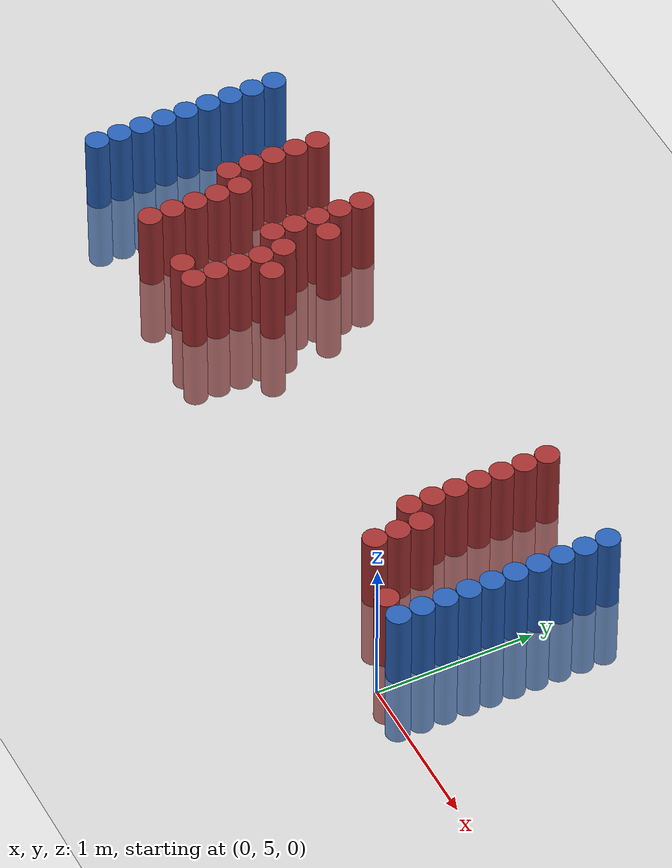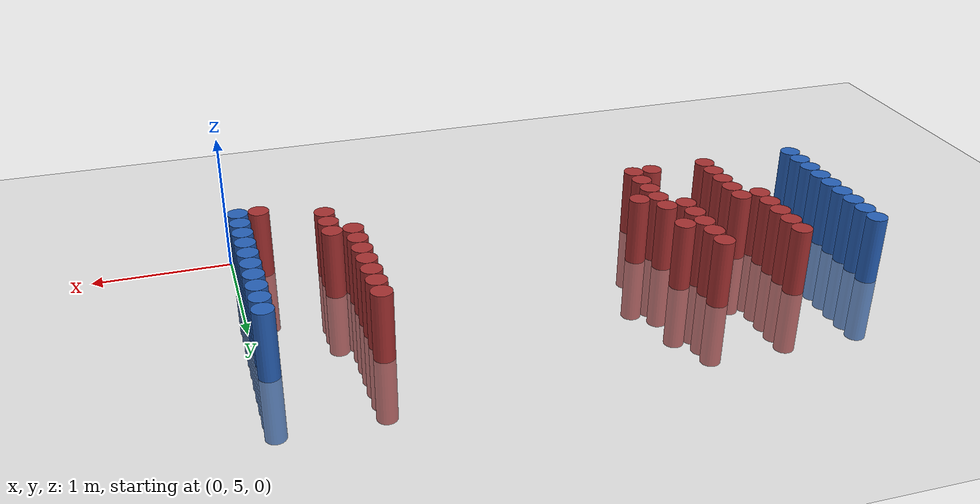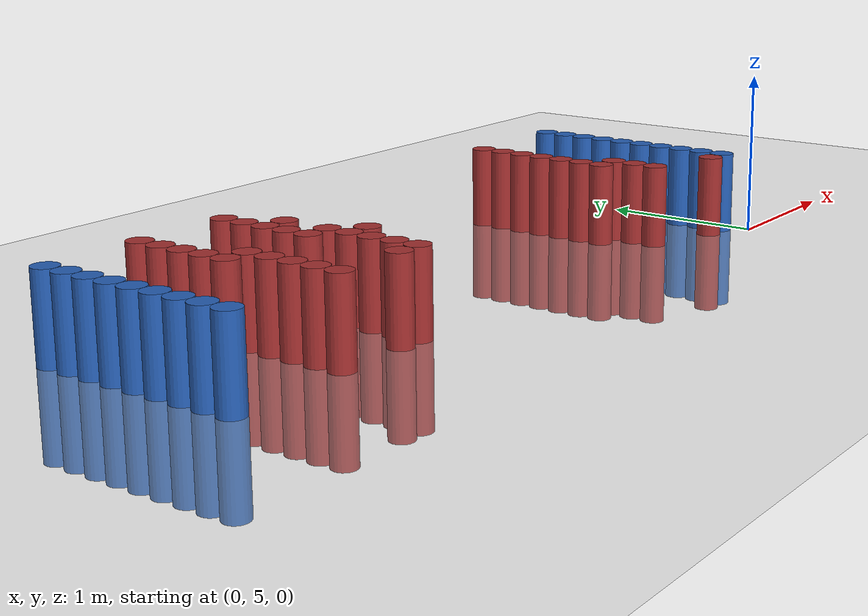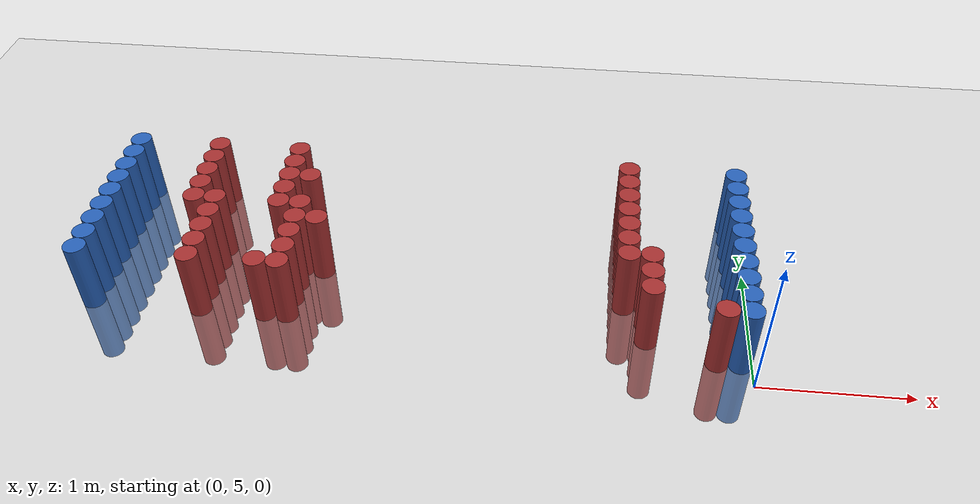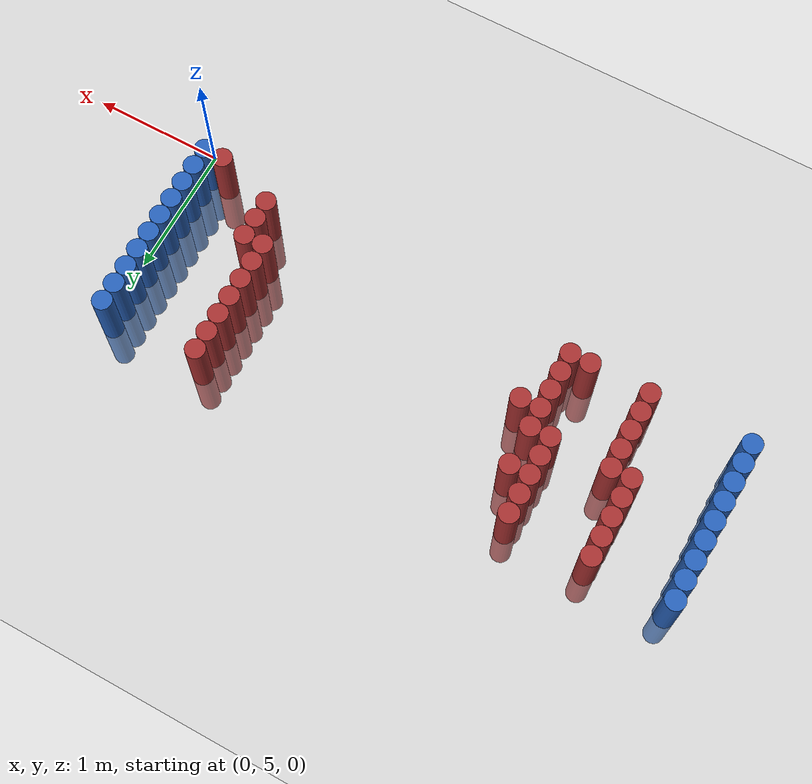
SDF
<sdf version="1.6">
 <world name="default">
  <model name="ground_plane">
   <static>1</static>
   <link name="link">
    <collision name="collision">
     <geometry><plane><normal>0 0 1</normal><size>100 100</size></plane></geometry>
     <surface><friction><ode><mu>100</mu><mu2>50</mu2></ode></friction></surface>
    </collision>
    <visual name="visual">
     <cast_shadows>0</cast_shadows>
     <geometry><plane><normal>0 0 1</normal><size>100 100</size></plane></geometry>
     <material>
      <script><uri>file://media/materials/scripts/gazebo.material</uri><name>Gazebo/Grey</name></script>
     </material>
    </visual>
   </link>
  </model>
  <model name="unit_cylinder_97">
   <static>1</static>
   <pose>-4.425000 5.325000 0.000000 0.000000 0.000000 0.000000</pose>
   <link name="link">
    <inertial>
     <mass>1</mass>
     <inertia><ixx>0.145833</ixx><ixy>0</ixy><ixz>0</ixz><iyy>0.145833</iyy><iyz>0</iyz><izz>0.125</izz></inertia>
    </inertial>
    <collision name="collision">
     <geometry><cylinder><radius>0.075000</radius><length>1</length></cylinder></geometry>
    </collision>
    <visual name="visual">
     <geometry><cylinder><radius>0.075000</radius><length>1</length></cylinder></geometry>
     <material>
      <ambient>0.152000 0.379000 0.720000 1</ambient>
      <diffuse>0.152000 0.379000 0.720000 1</diffuse>
     </material>
     <material>
      <script><name>Gazebo/Grey</name><uri>file://media/materials/scripts/gazebo.material</uri></script>
     </material>
    </visual>
   </link>
  </model>
  <model name="unit_cylinder_98">
   <static>1</static>
   <pose>-4.425000 5.475000 0.000000 0.000000 0.000000 0.000000</pose>
   <link name="link">
    <inertial>
     <mass>1</mass>
     <inertia><ixx>0.145833</ixx><ixy>0</ixy><ixz>0</ixz><iyy>0.145833</iyy><iyz>0</iyz><izz>0.125</izz></inertia>
    </inertial>
    <collision name="collision">
     <geometry><cylinder><radius>0.075000</radius><length>1</length></cylinder></geometry>
    </collision>
    <visual name="visual">
     <geometry><cylinder><radius>0.075000</radius><length>1</length></cylinder></geometry>
     <material>
      <ambient>0.152000 0.379000 0.720000 1</ambient>
      <diffuse>0.152000 0.379000 0.720000 1</diffuse>
     </material>
     <material>
      <script><name>Gazebo/Grey</name><uri>file://media/materials/scripts/gazebo.material</uri></script>
     </material>
    </visual>
   </link>
  </model>
  <model name="unit_cylinder_99">
   <static>1</static>
   <pose>-4.425000 5.625000 0.000000 0.000000 0.000000 0.000000</pose>
   <link name="link">
    <inertial>
     <mass>1</mass>
     <inertia><ixx>0.145833</ixx><ixy>0</ixy><ixz>0</ixz><iyy>0.145833</iyy><iyz>0</iyz><izz>0.125</izz></inertia>
    </inertial>
    <collision name="collision">
     <geometry><cylinder><radius>0.075000</radius><length>1</length></cylinder></geometry>
    </collision>
    <visual name="visual">
     <geometry><cylinder><radius>0.075000</radius><length>1</length></cylinder></geometry>
     <material>
      <ambient>0.152000 0.379000 0.720000 1</ambient>
      <diffuse>0.152000 0.379000 0.720000 1</diffuse>
     </material>
     <material>
      <script><name>Gazebo/Grey</name><uri>file://media/materials/scripts/gazebo.material</uri></script>
     </material>
    </visual>
   </link>
  </model>
  <model name="unit_cylinder_100">
   <static>1</static>
   <pose>-4.425000 5.775000 0.000000 0.000000 0.000000 0.000000</pose>
   <link name="link">
    <inertial>
     <mass>1</mass>
     <inertia><ixx>0.145833</ixx><ixy>0</ixy><ixz>0</ixz><iyy>0.145833</iyy><iyz>0</iyz><izz>0.125</izz></inertia>
    </inertial>
    <collision name="collision">
     <geometry><cylinder><radius>0.075000</radius><length>1</length></cylinder></geometry>
    </collision>
    <visual name="visual">
     <geometry><cylinder><radius>0.075000</radius><length>1</length></cylinder></geometry>
     <material>
      <ambient>0.152000 0.379000 0.720000 1</ambient>
      <diffuse>0.152000 0.379000 0.720000 1</diffuse>
     </material>
     <material>
      <script><name>Gazebo/Grey</name><uri>file://media/materials/scripts/gazebo.material</uri></script>
     </material>
    </visual>
   </link>
  </model>
  <model name="unit_cylinder_101">
   <static>1</static>
   <pose>-4.425000 5.925000 0.000000 0.000000 0.000000 0.000000</pose>
   <link name="link">
    <inertial>
     <mass>1</mass>
     <inertia><ixx>0.145833</ixx><ixy>0</ixy><ixz>0</ixz><iyy>0.145833</iyy><iyz>0</iyz><izz>0.125</izz></inertia>
    </inertial>
    <collision name="collision">
     <geometry><cylinder><radius>0.075000</radius><length>1</length></cylinder></geometry>
    </collision>
    <visual name="visual">
     <geometry><cylinder><radius>0.075000</radius><length>1</length></cylinder></geometry>
     <material>
      <ambient>0.152000 0.379000 0.720000 1</ambient>
      <diffuse>0.152000 0.379000 0.720000 1</diffuse>
     </material>
     <material>
      <script><name>Gazebo/Grey</name><uri>file://media/materials/scripts/gazebo.material</uri></script>
     </material>
    </visual>
   </link>
  </model>
  <model name="unit_cylinder_102">
   <static>1</static>
   <pose>-4.425000 6.075000 0.000000 0.000000 0.000000 0.000000</pose>
   <link name="link">
    <inertial>
     <mass>1</mass>
     <inertia><ixx>0.145833</ixx><ixy>0</ixy><ixz>0</ixz><iyy>0.145833</iyy><iyz>0</iyz><izz>0.125</izz></inertia>
    </inertial>
    <collision name="collision">
     <geometry><cylinder><radius>0.075000</radius><length>1</length></cylinder></geometry>
    </collision>
    <visual name="visual">
     <geometry><cylinder><radius>0.075000</radius><length>1</length></cylinder></geometry>
     <material>
      <ambient>0.152000 0.379000 0.720000 1</ambient>
      <diffuse>0.152000 0.379000 0.720000 1</diffuse>
     </material>
     <material>
      <script><name>Gazebo/Grey</name><uri>file://media/materials/scripts/gazebo.material</uri></script>
     </material>
    </visual>
   </link>
  </model>
  <model name="unit_cylinder_103">
   <static>1</static>
   <pose>-4.425000 6.225000 0.000000 0.000000 0.000000 0.000000</pose>
   <link name="link">
    <inertial>
     <mass>1</mass>
     <inertia><ixx>0.145833</ixx><ixy>0</ixy><ixz>0</ixz><iyy>0.145833</iyy><iyz>0</iyz><izz>0.125</izz></inertia>
    </inertial>
    <collision name="collision">
     <geometry><cylinder><radius>0.075000</radius><length>1</length></cylinder></geometry>
    </collision>
    <visual name="visual">
     <geometry><cylinder><radius>0.075000</radius><length>1</length></cylinder></geometry>
     <material>
      <ambient>0.152000 0.379000 0.720000 1</ambient>
      <diffuse>0.152000 0.379000 0.720000 1</diffuse>
     </material>
     <material>
      <script><name>Gazebo/Grey</name><uri>file://media/materials/scripts/gazebo.material</uri></script>
     </material>
    </visual>
   </link>
  </model>
  <model name="unit_cylinder_104">
   <static>1</static>
   <pose>-4.425000 6.375000 0.000000 0.000000 0.000000 0.000000</pose>
   <link name="link">
    <inertial>
     <mass>1</mass>
     <inertia><ixx>0.145833</ixx><ixy>0</ixy><ixz>0</ixz><iyy>0.145833</iyy><iyz>0</iyz><izz>0.125</izz></inertia>
    </inertial>
    <collision name="collision">
     <geometry><cylinder><radius>0.075000</radius><length>1</length></cylinder></geometry>
    </collision>
    <visual name="visual">
     <geometry><cylinder><radius>0.075000</radius><length>1</length></cylinder></geometry>
     <material>
      <ambient>0.152000 0.379000 0.720000 1</ambient>
      <diffuse>0.152000 0.379000 0.720000 1</diffuse>
     </material>
     <material>
      <script><name>Gazebo/Grey</name><uri>file://media/materials/scripts/gazebo.material</uri></script>
     </material>
    </visual>
   </link>
  </model>
  <model name="unit_cylinder_105">
   <static>1</static>
   <pose>-4.425000 6.525000 0.000000 0.000000 0.000000 0.000000</pose>
   <link name="link">
    <inertial>
     <mass>1</mass>
     <inertia><ixx>0.145833</ixx><ixy>0</ixy><ixz>0</ixz><iyy>0.145833</iyy><iyz>0</iyz><izz>0.125</izz></inertia>
    </inertial>
    <collision name="collision">
     <geometry><cylinder><radius>0.075000</radius><length>1</length></cylinder></geometry>
    </collision>
    <visual name="visual">
     <geometry><cylinder><radius>0.075000</radius><length>1</length></cylinder></geometry>
     <material>
      <ambient>0.152000 0.379000 0.720000 1</ambient>
      <diffuse>0.152000 0.379000 0.720000 1</diffuse>
     </material>
     <material>
      <script><name>Gazebo/Grey</name><uri>file://media/materials/scripts/gazebo.material</uri></script>
     </material>
    </visual>
   </link>
  </model>
  <model name="unit_cylinder_131">
   <static>1</static>
   <pose>-3.825000 5.925000 0.000000 0.000000 0.000000 0.000000</pose>
   <link name="link">
    <inertial>
     <mass>1</mass>
     <inertia><ixx>0.145833</ixx><ixy>0</ixy><ixz>0</ixz><iyy>0.145833</iyy><iyz>0</iyz><izz>0.125</izz></inertia>
    </inertial>
    <collision name="collision">
     <geometry><cylinder><radius>0.075000</radius><length>1</length></cylinder></geometry>
    </collision>
    <visual name="visual">
     <geometry><cylinder><radius>0.075000</radius><length>1</length></cylinder></geometry>
     <material>
      <ambient>0.648000 0.192000 0.192000 1</ambient>
      <diffuse>0.648000 0.192000 0.192000 1</diffuse>
     </material>
     <material>
      <script><name>Gazebo/Grey</name><uri>file://media/materials/scripts/gazebo.material</uri></script>
     </material>
    </visual>
   </link>
  </model>
  <model name="unit_cylinder_132">
   <static>1</static>
   <pose>-3.825000 6.075000 0.000000 0.000000 0.000000 0.000000</pose>
   <link name="link">
    <inertial>
     <mass>1</mass>
     <inertia><ixx>0.145833</ixx><ixy>0</ixy><ixz>0</ixz><iyy>0.145833</iyy><iyz>0</iyz><izz>0.125</izz></inertia>
    </inertial>
    <collision name="collision">
     <geometry><cylinder><radius>0.075000</radius><length>1</length></cylinder></geometry>
    </collision>
    <visual name="visual">
     <geometry><cylinder><radius>0.075000</radius><length>1</length></cylinder></geometry>
     <material>
      <ambient>0.648000 0.192000 0.192000 1</ambient>
      <diffuse>0.648000 0.192000 0.192000 1</diffuse>
     </material>
     <material>
      <script><name>Gazebo/Grey</name><uri>file://media/materials/scripts/gazebo.material</uri></script>
     </material>
    </visual>
   </link>
  </model>
  <model name="unit_cylinder_133">
   <static>1</static>
   <pose>-3.825000 6.225000 0.000000 0.000000 0.000000 0.000000</pose>
   <link name="link">
    <inertial>
     <mass>1</mass>
     <inertia><ixx>0.145833</ixx><ixy>0</ixy><ixz>0</ixz><iyy>0.145833</iyy><iyz>0</iyz><izz>0.125</izz></inertia>
    </inertial>
    <collision name="collision">
     <geometry><cylinder><radius>0.075000</radius><length>1</length></cylinder></geometry>
    </collision>
    <visual name="visual">
     <geometry><cylinder><radius>0.075000</radius><length>1</length></cylinder></geometry>
     <material>
      <ambient>0.648000 0.192000 0.192000 1</ambient>
      <diffuse>0.648000 0.192000 0.192000 1</diffuse>
     </material>
     <material>
      <script><name>Gazebo/Grey</name><uri>file://media/materials/scripts/gazebo.material</uri></script>
     </material>
    </visual>
   </link>
  </model>
  <model name="unit_cylinder_134">
   <static>1</static>
   <pose>-3.825000 6.375000 0.000000 0.000000 0.000000 0.000000</pose>
   <link name="link">
    <inertial>
     <mass>1</mass>
     <inertia><ixx>0.145833</ixx><ixy>0</ixy><ixz>0</ixz><iyy>0.145833</iyy><iyz>0</iyz><izz>0.125</izz></inertia>
    </inertial>
    <collision name="collision">
     <geometry><cylinder><radius>0.075000</radius><length>1</length></cylinder></geometry>
    </collision>
    <visual name="visual">
     <geometry><cylinder><radius>0.075000</radius><length>1</length></cylinder></geometry>
     <material>
      <ambient>0.648000 0.192000 0.192000 1</ambient>
      <diffuse>0.648000 0.192000 0.192000 1</diffuse>
     </material>
     <material>
      <script><name>Gazebo/Grey</name><uri>file://media/materials/scripts/gazebo.material</uri></script>
     </material>
    </visual>
   </link>
  </model>
  <model name="unit_cylinder_135">
   <static>1</static>
   <pose>-3.825000 6.525000 0.000000 0.000000 0.000000 0.000000</pose>
   <link name="link">
    <inertial>
     <mass>1</mass>
     <inertia><ixx>0.145833</ixx><ixy>0</ixy><ixz>0</ixz><iyy>0.145833</iyy><iyz>0</iyz><izz>0.125</izz></inertia>
    </inertial>
    <collision name="collision">
     <geometry><cylinder><radius>0.075000</radius><length>1</length></cylinder></geometry>
    </collision>
    <visual name="visual">
     <geometry><cylinder><radius>0.075000</radius><length>1</length></cylinder></geometry>
     <material>
      <ambient>0.648000 0.192000 0.192000 1</ambient>
      <diffuse>0.648000 0.192000 0.192000 1</diffuse>
     </material>
     <material>
      <script><name>Gazebo/Grey</name><uri>file://media/materials/scripts/gazebo.material</uri></script>
     </material>
    </visual>
   </link>
  </model>
  <model name="unit_cylinder_151">
   <static>1</static>
   <pose>-3.675000 5.325000 0.000000 0.000000 0.000000 0.000000</pose>
   <link name="link">
    <inertial>
     <mass>1</mass>
     <inertia><ixx>0.145833</ixx><ixy>0</ixy><ixz>0</ixz><iyy>0.145833</iyy><iyz>0</iyz><izz>0.125</izz></inertia>
    </inertial>
    <collision name="collision">
     <geometry><cylinder><radius>0.075000</radius><length>1</length></cylinder></geometry>
    </collision>
    <visual name="visual">
     <geometry><cylinder><radius>0.075000</radius><length>1</length></cylinder></geometry>
     <material>
      <ambient>0.648000 0.192000 0.192000 1</ambient>
      <diffuse>0.648000 0.192000 0.192000 1</diffuse>
     </material>
     <material>
      <script><name>Gazebo/Grey</name><uri>file://media/materials/scripts/gazebo.material</uri></script>
     </material>
    </visual>
   </link>
  </model>
  <model name="unit_cylinder_152">
   <static>1</static>
   <pose>-3.675000 5.475000 0.000000 0.000000 0.000000 0.000000</pose>
   <link name="link">
    <inertial>
     <mass>1</mass>
     <inertia><ixx>0.145833</ixx><ixy>0</ixy><ixz>0</ixz><iyy>0.145833</iyy><iyz>0</iyz><izz>0.125</izz></inertia>
    </inertial>
    <collision name="collision">
     <geometry><cylinder><radius>0.075000</radius><length>1</length></cylinder></geometry>
    </collision>
    <visual name="visual">
     <geometry><cylinder><radius>0.075000</radius><length>1</length></cylinder></geometry>
     <material>
      <ambient>0.648000 0.192000 0.192000 1</ambient>
      <diffuse>0.648000 0.192000 0.192000 1</diffuse>
     </material>
     <material>
      <script><name>Gazebo/Grey</name><uri>file://media/materials/scripts/gazebo.material</uri></script>
     </material>
    </visual>
   </link>
  </model>
  <model name="unit_cylinder_153">
   <static>1</static>
   <pose>-3.675000 5.625000 0.000000 0.000000 0.000000 0.000000</pose>
   <link name="link">
    <inertial>
     <mass>1</mass>
     <inertia><ixx>0.145833</ixx><ixy>0</ixy><ixz>0</ixz><iyy>0.145833</iyy><iyz>0</iyz><izz>0.125</izz></inertia>
    </inertial>
    <collision name="collision">
     <geometry><cylinder><radius>0.075000</radius><length>1</length></cylinder></geometry>
    </collision>
    <visual name="visual">
     <geometry><cylinder><radius>0.075000</radius><length>1</length></cylinder></geometry>
     <material>
      <ambient>0.648000 0.192000 0.192000 1</ambient>
      <diffuse>0.648000 0.192000 0.192000 1</diffuse>
     </material>
     <material>
      <script><name>Gazebo/Grey</name><uri>file://media/materials/scripts/gazebo.material</uri></script>
     </material>
    </visual>
   </link>
  </model>
  <model name="unit_cylinder_154">
   <static>1</static>
   <pose>-3.675000 5.775000 0.000000 0.000000 0.000000 0.000000</pose>
   <link name="link">
    <inertial>
     <mass>1</mass>
     <inertia><ixx>0.145833</ixx><ixy>0</ixy><ixz>0</ixz><iyy>0.145833</iyy><iyz>0</iyz><izz>0.125</izz></inertia>
    </inertial>
    <collision name="collision">
     <geometry><cylinder><radius>0.075000</radius><length>1</length></cylinder></geometry>
    </collision>
    <visual name="visual">
     <geometry><cylinder><radius>0.075000</radius><length>1</length></cylinder></geometry>
     <material>
      <ambient>0.648000 0.192000 0.192000 1</ambient>
      <diffuse>0.648000 0.192000 0.192000 1</diffuse>
     </material>
     <material>
      <script><name>Gazebo/Grey</name><uri>file://media/materials/scripts/gazebo.material</uri></script>
     </material>
    </visual>
   </link>
  </model>
  <model name="unit_cylinder_155">
   <static>1</static>
   <pose>-3.675000 5.925000 0.000000 0.000000 0.000000 0.000000</pose>
   <link name="link">
    <inertial>
     <mass>1</mass>
     <inertia><ixx>0.145833</ixx><ixy>0</ixy><ixz>0</ixz><iyy>0.145833</iyy><iyz>0</iyz><izz>0.125</izz></inertia>
    </inertial>
    <collision name="collision">
     <geometry><cylinder><radius>0.075000</radius><length>1</length></cylinder></geometry>
    </collision>
    <visual name="visual">
     <geometry><cylinder><radius>0.075000</radius><length>1</length></cylinder></geometry>
     <material>
      <ambient>0.648000 0.192000 0.192000 1</ambient>
      <diffuse>0.648000 0.192000 0.192000 1</diffuse>
     </material>
     <material>
      <script><name>Gazebo/Grey</name><uri>file://media/materials/scripts/gazebo.material</uri></script>
     </material>
    </visual>
   </link>
  </model>
  <model name="unit_cylinder_171">
   <static>1</static>
   <pose>-3.225000 5.325000 0.000000 0.000000 0.000000 0.000000</pose>
   <link name="link">
    <inertial>
     <mass>1</mass>
     <inertia><ixx>0.145833</ixx><ixy>0</ixy><ixz>0</ixz><iyy>0.145833</iyy><iyz>0</iyz><izz>0.125</izz></inertia>
    </inertial>
    <collision name="collision">
     <geometry><cylinder><radius>0.075000</radius><length>1</length></cylinder></geometry>
    </collision>
    <visual name="visual">
     <geometry><cylinder><radius>0.075000</radius><length>1</length></cylinder></geometry>
     <material>
      <ambient>0.648000 0.192000 0.192000 1</ambient>
      <diffuse>0.648000 0.192000 0.192000 1</diffuse>
     </material>
     <material>
      <script><name>Gazebo/Grey</name><uri>file://media/materials/scripts/gazebo.material</uri></script>
     </material>
    </visual>
   </link>
  </model>
  <model name="unit_cylinder_172">
   <static>1</static>
   <pose>-3.225000 5.925000 0.000000 0.000000 0.000000 0.000000</pose>
   <link name="link">
    <inertial>
     <mass>1</mass>
     <inertia><ixx>0.145833</ixx><ixy>0</ixy><ixz>0</ixz><iyy>0.145833</iyy><iyz>0</iyz><izz>0.125</izz></inertia>
    </inertial>
    <collision name="collision">
     <geometry><cylinder><radius>0.075000</radius><length>1</length></cylinder></geometry>
    </collision>
    <visual name="visual">
     <geometry><cylinder><radius>0.075000</radius><length>1</length></cylinder></geometry>
     <material>
      <ambient>0.648000 0.192000 0.192000 1</ambient>
      <diffuse>0.648000 0.192000 0.192000 1</diffuse>
     </material>
     <material>
      <script><name>Gazebo/Grey</name><uri>file://media/materials/scripts/gazebo.material</uri></script>
     </material>
    </visual>
   </link>
  </model>
  <model name="unit_cylinder_173">
   <static>1</static>
   <pose>-3.225000 6.075000 0.000000 0.000000 0.000000 0.000000</pose>
   <link name="link">
    <inertial>
     <mass>1</mass>
     <inertia><ixx>0.145833</ixx><ixy>0</ixy><ixz>0</ixz><iyy>0.145833</iyy><iyz>0</iyz><izz>0.125</izz></inertia>
    </inertial>
    <collision name="collision">
     <geometry><cylinder><radius>0.075000</radius><length>1</length></cylinder></geometry>
    </collision>
    <visual name="visual">
     <geometry><cylinder><radius>0.075000</radius><length>1</length></cylinder></geometry>
     <material>
      <ambient>0.648000 0.192000 0.192000 1</ambient>
      <diffuse>0.648000 0.192000 0.192000 1</diffuse>
     </material>
     <material>
      <script><name>Gazebo/Grey</name><uri>file://media/materials/scripts/gazebo.material</uri></script>
     </material>
    </visual>
   </link>
  </model>
  <model name="unit_cylinder_174">
   <static>1</static>
   <pose>-3.225000 6.225000 0.000000 0.000000 0.000000 0.000000</pose>
   <link name="link">
    <inertial>
     <mass>1</mass>
     <inertia><ixx>0.145833</ixx><ixy>0</ixy><ixz>0</ixz><iyy>0.145833</iyy><iyz>0</iyz><izz>0.125</izz></inertia>
    </inertial>
    <collision name="collision">
     <geometry><cylinder><radius>0.075000</radius><length>1</length></cylinder></geometry>
    </collision>
    <visual name="visual">
     <geometry><cylinder><radius>0.075000</radius><length>1</length></cylinder></geometry>
     <material>
      <ambient>0.648000 0.192000 0.192000 1</ambient>
      <diffuse>0.648000 0.192000 0.192000 1</diffuse>
     </material>
     <material>
      <script><name>Gazebo/Grey</name><uri>file://media/materials/scripts/gazebo.material</uri></script>
     </material>
    </visual>
   </link>
  </model>
  <model name="unit_cylinder_175">
   <static>1</static>
   <pose>-3.225000 6.375000 0.000000 0.000000 0.000000 0.000000</pose>
   <link name="link">
    <inertial>
     <mass>1</mass>
     <inertia><ixx>0.145833</ixx><ixy>0</ixy><ixz>0</ixz><iyy>0.145833</iyy><iyz>0</iyz><izz>0.125</izz></inertia>
    </inertial>
    <collision name="collision">
     <geometry><cylinder><radius>0.075000</radius><length>1</length></cylinder></geometry>
    </collision>
    <visual name="visual">
     <geometry><cylinder><radius>0.075000</radius><length>1</length></cylinder></geometry>
     <material>
      <ambient>0.648000 0.192000 0.192000 1</ambient>
      <diffuse>0.648000 0.192000 0.192000 1</diffuse>
     </material>
     <material>
      <script><name>Gazebo/Grey</name><uri>file://media/materials/scripts/gazebo.material</uri></script>
     </material>
    </visual>
   </link>
  </model>
  <model name="unit_cylinder_176">
   <static>1</static>
   <pose>-3.225000 6.525000 0.000000 0.000000 0.000000 0.000000</pose>
   <link name="link">
    <inertial>
     <mass>1</mass>
     <inertia><ixx>0.145833</ixx><ixy>0</ixy><ixz>0</ixz><iyy>0.145833</iyy><iyz>0</iyz><izz>0.125</izz></inertia>
    </inertial>
    <collision name="collision">
     <geometry><cylinder><radius>0.075000</radius><length>1</length></cylinder></geometry>
    </collision>
    <visual name="visual">
     <geometry><cylinder><radius>0.075000</radius><length>1</length></cylinder></geometry>
     <material>
      <ambient>0.648000 0.192000 0.192000 1</ambient>
      <diffuse>0.648000 0.192000 0.192000 1</diffuse>
     </material>
     <material>
      <script><name>Gazebo/Grey</name><uri>file://media/materials/scripts/gazebo.material</uri></script>
     </material>
    </visual>
   </link>
  </model>
  <model name="unit_cylinder_188">
   <static>1</static>
   <pose>-3.075000 5.325000 0.000000 0.000000 0.000000 0.000000</pose>
   <link name="link">
    <inertial>
     <mass>1</mass>
     <inertia><ixx>0.145833</ixx><ixy>0</ixy><ixz>0</ixz><iyy>0.145833</iyy><iyz>0</iyz><izz>0.125</izz></inertia>
    </inertial>
    <collision name="collision">
     <geometry><cylinder><radius>0.075000</radius><length>1</length></cylinder></geometry>
    </collision>
    <visual name="visual">
     <geometry><cylinder><radius>0.075000</radius><length>1</length></cylinder></geometry>
     <material>
      <ambient>0.648000 0.192000 0.192000 1</ambient>
      <diffuse>0.648000 0.192000 0.192000 1</diffuse>
     </material>
     <material>
      <script><name>Gazebo/Grey</name><uri>file://media/materials/scripts/gazebo.material</uri></script>
     </material>
    </visual>
   </link>
  </model>
  <model name="unit_cylinder_189">
   <static>1</static>
   <pose>-3.075000 5.475000 0.000000 0.000000 0.000000 0.000000</pose>
   <link name="link">
    <inertial>
     <mass>1</mass>
     <inertia><ixx>0.145833</ixx><ixy>0</ixy><ixz>0</ixz><iyy>0.145833</iyy><iyz>0</iyz><izz>0.125</izz></inertia>
    </inertial>
    <collision name="collision">
     <geometry><cylinder><radius>0.075000</radius><length>1</length></cylinder></geometry>
    </collision>
    <visual name="visual">
     <geometry><cylinder><radius>0.075000</radius><length>1</length></cylinder></geometry>
     <material>
      <ambient>0.648000 0.192000 0.192000 1</ambient>
      <diffuse>0.648000 0.192000 0.192000 1</diffuse>
     </material>
     <material>
      <script><name>Gazebo/Grey</name><uri>file://media/materials/scripts/gazebo.material</uri></script>
     </material>
    </visual>
   </link>
  </model>
  <model name="unit_cylinder_190">
   <static>1</static>
   <pose>-3.075000 5.625000 0.000000 0.000000 0.000000 0.000000</pose>
   <link name="link">
    <inertial>
     <mass>1</mass>
     <inertia><ixx>0.145833</ixx><ixy>0</ixy><ixz>0</ixz><iyy>0.145833</iyy><iyz>0</iyz><izz>0.125</izz></inertia>
    </inertial>
    <collision name="collision">
     <geometry><cylinder><radius>0.075000</radius><length>1</length></cylinder></geometry>
    </collision>
    <visual name="visual">
     <geometry><cylinder><radius>0.075000</radius><length>1</length></cylinder></geometry>
     <material>
      <ambient>0.648000 0.192000 0.192000 1</ambient>
      <diffuse>0.648000 0.192000 0.192000 1</diffuse>
     </material>
     <material>
      <script><name>Gazebo/Grey</name><uri>file://media/materials/scripts/gazebo.material</uri></script>
     </material>
    </visual>
   </link>
  </model>
  <model name="unit_cylinder_191">
   <static>1</static>
   <pose>-3.075000 5.775000 0.000000 0.000000 0.000000 0.000000</pose>
   <link name="link">
    <inertial>
     <mass>1</mass>
     <inertia><ixx>0.145833</ixx><ixy>0</ixy><ixz>0</ixz><iyy>0.145833</iyy><iyz>0</iyz><izz>0.125</izz></inertia>
    </inertial>
    <collision name="collision">
     <geometry><cylinder><radius>0.075000</radius><length>1</length></cylinder></geometry>
    </collision>
    <visual name="visual">
     <geometry><cylinder><radius>0.075000</radius><length>1</length></cylinder></geometry>
     <material>
      <ambient>0.648000 0.192000 0.192000 1</ambient>
      <diffuse>0.648000 0.192000 0.192000 1</diffuse>
     </material>
     <material>
      <script><name>Gazebo/Grey</name><uri>file://media/materials/scripts/gazebo.material</uri></script>
     </material>
    </visual>
   </link>
  </model>
  <model name="unit_cylinder_192">
   <static>1</static>
   <pose>-3.075000 5.925000 0.000000 0.000000 0.000000 0.000000</pose>
   <link name="link">
    <inertial>
     <mass>1</mass>
     <inertia><ixx>0.145833</ixx><ixy>0</ixy><ixz>0</ixz><iyy>0.145833</iyy><iyz>0</iyz><izz>0.125</izz></inertia>
    </inertial>
    <collision name="collision">
     <geometry><cylinder><radius>0.075000</radius><length>1</length></cylinder></geometry>
    </collision>
    <visual name="visual">
     <geometry><cylinder><radius>0.075000</radius><length>1</length></cylinder></geometry>
     <material>
      <ambient>0.648000 0.192000 0.192000 1</ambient>
      <diffuse>0.648000 0.192000 0.192000 1</diffuse>
     </material>
     <material>
      <script><name>Gazebo/Grey</name><uri>file://media/materials/scripts/gazebo.material</uri></script>
     </material>
    </visual>
   </link>
  </model>
  <model name="unit_cylinder_193">
   <static>1</static>
   <pose>-3.075000 6.225000 0.000000 0.000000 0.000000 0.000000</pose>
   <link name="link">
    <inertial>
     <mass>1</mass>
     <inertia><ixx>0.145833</ixx><ixy>0</ixy><ixz>0</ixz><iyy>0.145833</iyy><iyz>0</iyz><izz>0.125</izz></inertia>
    </inertial>
    <collision name="collision">
     <geometry><cylinder><radius>0.075000</radius><length>1</length></cylinder></geometry>
    </collision>
    <visual name="visual">
     <geometry><cylinder><radius>0.075000</radius><length>1</length></cylinder></geometry>
     <material>
      <ambient>0.648000 0.192000 0.192000 1</ambient>
      <diffuse>0.648000 0.192000 0.192000 1</diffuse>
     </material>
     <material>
      <script><name>Gazebo/Grey</name><uri>file://media/materials/scripts/gazebo.material</uri></script>
     </material>
    </visual>
   </link>
  </model>
  <model name="unit_cylinder_194">
   <static>1</static>
   <pose>-2.925000 5.775000 0.000000 0.000000 0.000000 0.000000</pose>
   <link name="link">
    <inertial>
     <mass>1</mass>
     <inertia><ixx>0.145833</ixx><ixy>0</ixy><ixz>0</ixz><iyy>0.145833</iyy><iyz>0</iyz><izz>0.125</izz></inertia>
    </inertial>
    <collision name="collision">
     <geometry><cylinder><radius>0.075000</radius><length>1</length></cylinder></geometry>
    </collision>
    <visual name="visual">
     <geometry><cylinder><radius>0.075000</radius><length>1</length></cylinder></geometry>
     <material>
      <ambient>0.648000 0.192000 0.192000 1</ambient>
      <diffuse>0.648000 0.192000 0.192000 1</diffuse>
     </material>
     <material>
      <script><name>Gazebo/Grey</name><uri>file://media/materials/scripts/gazebo.material</uri></script>
     </material>
    </visual>
   </link>
  </model>
  <model name="unit_cylinder_199">
   <static>1</static>
   <pose>-0.825000 5.625000 0.000000 0.000000 0.000000 0.000000</pose>
   <link name="link">
    <inertial>
     <mass>1</mass>
     <inertia><ixx>0.145833</ixx><ixy>0</ixy><ixz>0</ixz><iyy>0.145833</iyy><iyz>0</iyz><izz>0.125</izz></inertia>
    </inertial>
    <collision name="collision">
     <geometry><cylinder><radius>0.075000</radius><length>1</length></cylinder></geometry>
    </collision>
    <visual name="visual">
     <geometry><cylinder><radius>0.075000</radius><length>1</length></cylinder></geometry>
     <material>
      <ambient>0.648000 0.192000 0.192000 1</ambient>
      <diffuse>0.648000 0.192000 0.192000 1</diffuse>
     </material>
     <material>
      <script><name>Gazebo/Grey</name><uri>file://media/materials/scripts/gazebo.material</uri></script>
     </material>
    </visual>
   </link>
  </model>
  <model name="unit_cylinder_200">
   <static>1</static>
   <pose>-0.825000 5.775000 0.000000 0.000000 0.000000 0.000000</pose>
   <link name="link">
    <inertial>
     <mass>1</mass>
     <inertia><ixx>0.145833</ixx><ixy>0</ixy><ixz>0</ixz><iyy>0.145833</iyy><iyz>0</iyz><izz>0.125</izz></inertia>
    </inertial>
    <collision name="collision">
     <geometry><cylinder><radius>0.075000</radius><length>1</length></cylinder></geometry>
    </collision>
    <visual name="visual">
     <geometry><cylinder><radius>0.075000</radius><length>1</length></cylinder></geometry>
     <material>
      <ambient>0.648000 0.192000 0.192000 1</ambient>
      <diffuse>0.648000 0.192000 0.192000 1</diffuse>
     </material>
     <material>
      <script><name>Gazebo/Grey</name><uri>file://media/materials/scripts/gazebo.material</uri></script>
     </material>
    </visual>
   </link>
  </model>
  <model name="unit_cylinder_201">
   <static>1</static>
   <pose>-0.825000 5.925000 0.000000 0.000000 0.000000 0.000000</pose>
   <link name="link">
    <inertial>
     <mass>1</mass>
     <inertia><ixx>0.145833</ixx><ixy>0</ixy><ixz>0</ixz><iyy>0.145833</iyy><iyz>0</iyz><izz>0.125</izz></inertia>
    </inertial>
    <collision name="collision">
     <geometry><cylinder><radius>0.075000</radius><length>1</length></cylinder></geometry>
    </collision>
    <visual name="visual">
     <geometry><cylinder><radius>0.075000</radius><length>1</length></cylinder></geometry>
     <material>
      <ambient>0.648000 0.192000 0.192000 1</ambient>
      <diffuse>0.648000 0.192000 0.192000 1</diffuse>
     </material>
     <material>
      <script><name>Gazebo/Grey</name><uri>file://media/materials/scripts/gazebo.material</uri></script>
     </material>
    </visual>
   </link>
  </model>
  <model name="unit_cylinder_202">
   <static>1</static>
   <pose>-0.825000 6.075000 0.000000 0.000000 0.000000 0.000000</pose>
   <link name="link">
    <inertial>
     <mass>1</mass>
     <inertia><ixx>0.145833</ixx><ixy>0</ixy><ixz>0</ixz><iyy>0.145833</iyy><iyz>0</iyz><izz>0.125</izz></inertia>
    </inertial>
    <collision name="collision">
     <geometry><cylinder><radius>0.075000</radius><length>1</length></cylinder></geometry>
    </collision>
    <visual name="visual">
     <geometry><cylinder><radius>0.075000</radius><length>1</length></cylinder></geometry>
     <material>
      <ambient>0.648000 0.192000 0.192000 1</ambient>
      <diffuse>0.648000 0.192000 0.192000 1</diffuse>
     </material>
     <material>
      <script><name>Gazebo/Grey</name><uri>file://media/materials/scripts/gazebo.material</uri></script>
     </material>
    </visual>
   </link>
  </model>
  <model name="unit_cylinder_203">
   <static>1</static>
   <pose>-0.825000 6.225000 0.000000 0.000000 0.000000 0.000000</pose>
   <link name="link">
    <inertial>
     <mass>1</mass>
     <inertia><ixx>0.145833</ixx><ixy>0</ixy><ixz>0</ixz><iyy>0.145833</iyy><iyz>0</iyz><izz>0.125</izz></inertia>
    </inertial>
    <collision name="collision">
     <geometry><cylinder><radius>0.075000</radius><length>1</length></cylinder></geometry>
    </collision>
    <visual name="visual">
     <geometry><cylinder><radius>0.075000</radius><length>1</length></cylinder></geometry>
     <material>
      <ambient>0.648000 0.192000 0.192000 1</ambient>
      <diffuse>0.648000 0.192000 0.192000 1</diffuse>
     </material>
     <material>
      <script><name>Gazebo/Grey</name><uri>file://media/materials/scripts/gazebo.material</uri></script>
     </material>
    </visual>
   </link>
  </model>
  <model name="unit_cylinder_204">
   <static>1</static>
   <pose>-0.825000 6.375000 0.000000 0.000000 0.000000 0.000000</pose>
   <link name="link">
    <inertial>
     <mass>1</mass>
     <inertia><ixx>0.145833</ixx><ixy>0</ixy><ixz>0</ixz><iyy>0.145833</iyy><iyz>0</iyz><izz>0.125</izz></inertia>
    </inertial>
    <collision name="collision">
     <geometry><cylinder><radius>0.075000</radius><length>1</length></cylinder></geometry>
    </collision>
    <visual name="visual">
     <geometry><cylinder><radius>0.075000</radius><length>1</length></cylinder></geometry>
     <material>
      <ambient>0.648000 0.192000 0.192000 1</ambient>
      <diffuse>0.648000 0.192000 0.192000 1</diffuse>
     </material>
     <material>
      <script><name>Gazebo/Grey</name><uri>file://media/materials/scripts/gazebo.material</uri></script>
     </material>
    </visual>
   </link>
  </model>
  <model name="unit_cylinder_205">
   <static>1</static>
   <pose>-0.825000 6.525000 0.000000 0.000000 0.000000 0.000000</pose>
   <link name="link">
    <inertial>
     <mass>1</mass>
     <inertia><ixx>0.145833</ixx><ixy>0</ixy><ixz>0</ixz><iyy>0.145833</iyy><iyz>0</iyz><izz>0.125</izz></inertia>
    </inertial>
    <collision name="collision">
     <geometry><cylinder><radius>0.075000</radius><length>1</length></cylinder></geometry>
    </collision>
    <visual name="visual">
     <geometry><cylinder><radius>0.075000</radius><length>1</length></cylinder></geometry>
     <material>
      <ambient>0.648000 0.192000 0.192000 1</ambient>
      <diffuse>0.648000 0.192000 0.192000 1</diffuse>
     </material>
     <material>
      <script><name>Gazebo/Grey</name><uri>file://media/materials/scripts/gazebo.material</uri></script>
     </material>
    </visual>
   </link>
  </model>
  <model name="unit_cylinder_221">
   <static>1</static>
   <pose>-0.675000 5.325000 0.000000 0.000000 0.000000 0.000000</pose>
   <link name="link">
    <inertial>
     <mass>1</mass>
     <inertia><ixx>0.145833</ixx><ixy>0</ixy><ixz>0</ixz><iyy>0.145833</iyy><iyz>0</iyz><izz>0.125</izz></inertia>
    </inertial>
    <collision name="collision">
     <geometry><cylinder><radius>0.075000</radius><length>1</length></cylinder></geometry>
    </collision>
    <visual name="visual">
     <geometry><cylinder><radius>0.075000</radius><length>1</length></cylinder></geometry>
     <material>
      <ambient>0.648000 0.192000 0.192000 1</ambient>
      <diffuse>0.648000 0.192000 0.192000 1</diffuse>
     </material>
     <material>
      <script><name>Gazebo/Grey</name><uri>file://media/materials/scripts/gazebo.material</uri></script>
     </material>
    </visual>
   </link>
  </model>
  <model name="unit_cylinder_222">
   <static>1</static>
   <pose>-0.675000 5.475000 0.000000 0.000000 0.000000 0.000000</pose>
   <link name="link">
    <inertial>
     <mass>1</mass>
     <inertia><ixx>0.145833</ixx><ixy>0</ixy><ixz>0</ixz><iyy>0.145833</iyy><iyz>0</iyz><izz>0.125</izz></inertia>
    </inertial>
    <collision name="collision">
     <geometry><cylinder><radius>0.075000</radius><length>1</length></cylinder></geometry>
    </collision>
    <visual name="visual">
     <geometry><cylinder><radius>0.075000</radius><length>1</length></cylinder></geometry>
     <material>
      <ambient>0.648000 0.192000 0.192000 1</ambient>
      <diffuse>0.648000 0.192000 0.192000 1</diffuse>
     </material>
     <material>
      <script><name>Gazebo/Grey</name><uri>file://media/materials/scripts/gazebo.material</uri></script>
     </material>
    </visual>
   </link>
  </model>
  <model name="unit_cylinder_223">
   <static>1</static>
   <pose>-0.675000 5.625000 0.000000 0.000000 0.000000 0.000000</pose>
   <link name="link">
    <inertial>
     <mass>1</mass>
     <inertia><ixx>0.145833</ixx><ixy>0</ixy><ixz>0</ixz><iyy>0.145833</iyy><iyz>0</iyz><izz>0.125</izz></inertia>
    </inertial>
    <collision name="collision">
     <geometry><cylinder><radius>0.075000</radius><length>1</length></cylinder></geometry>
    </collision>
    <visual name="visual">
     <geometry><cylinder><radius>0.075000</radius><length>1</length></cylinder></geometry>
     <material>
      <ambient>0.648000 0.192000 0.192000 1</ambient>
      <diffuse>0.648000 0.192000 0.192000 1</diffuse>
     </material>
     <material>
      <script><name>Gazebo/Grey</name><uri>file://media/materials/scripts/gazebo.material</uri></script>
     </material>
    </visual>
   </link>
  </model>
  <model name="unit_cylinder_231">
   <static>1</static>
   <pose>-0.225000 5.175000 0.000000 0.000000 0.000000 0.000000</pose>
   <link name="link">
    <inertial>
     <mass>1</mass>
     <inertia><ixx>0.145833</ixx><ixy>0</ixy><ixz>0</ixz><iyy>0.145833</iyy><iyz>0</iyz><izz>0.125</izz></inertia>
    </inertial>
    <collision name="collision">
     <geometry><cylinder><radius>0.075000</radius><length>1</length></cylinder></geometry>
    </collision>
    <visual name="visual">
     <geometry><cylinder><radius>0.075000</radius><length>1</length></cylinder></geometry>
     <material>
      <ambient>0.648000 0.192000 0.192000 1</ambient>
      <diffuse>0.648000 0.192000 0.192000 1</diffuse>
     </material>
     <material>
      <script><name>Gazebo/Grey</name><uri>file://media/materials/scripts/gazebo.material</uri></script>
     </material>
    </visual>
   </link>
  </model>
  <model name="unit_cylinder_233">
   <static>1</static>
   <pose>-0.075000 5.175000 0.000000 0.000000 0.000000 0.000000</pose>
   <link name="link">
    <inertial>
     <mass>1</mass>
     <inertia><ixx>0.145833</ixx><ixy>0</ixy><ixz>0</ixz><iyy>0.145833</iyy><iyz>0</iyz><izz>0.125</izz></inertia>
    </inertial>
    <collision name="collision">
     <geometry><cylinder><radius>0.075000</radius><length>1</length></cylinder></geometry>
    </collision>
    <visual name="visual">
     <geometry><cylinder><radius>0.075000</radius><length>1</length></cylinder></geometry>
     <material>
      <ambient>0.152000 0.379000 0.720000 1</ambient>
      <diffuse>0.152000 0.379000 0.720000 1</diffuse>
     </material>
     <material>
      <script><name>Gazebo/Grey</name><uri>file://media/materials/scripts/gazebo.material</uri></script>
     </material>
    </visual>
   </link>
  </model>
  <model name="unit_cylinder_234">
   <static>1</static>
   <pose>-0.075000 5.325000 0.000000 0.000000 0.000000 0.000000</pose>
   <link name="link">
    <inertial>
     <mass>1</mass>
     <inertia><ixx>0.145833</ixx><ixy>0</ixy><ixz>0</ixz><iyy>0.145833</iyy><iyz>0</iyz><izz>0.125</izz></inertia>
    </inertial>
    <collision name="collision">
     <geometry><cylinder><radius>0.075000</radius><length>1</length></cylinder></geometry>
    </collision>
    <visual name="visual">
     <geometry><cylinder><radius>0.075000</radius><length>1</length></cylinder></geometry>
     <material>
      <ambient>0.152000 0.379000 0.720000 1</ambient>
      <diffuse>0.152000 0.379000 0.720000 1</diffuse>
     </material>
     <material>
      <script><name>Gazebo/Grey</name><uri>file://media/materials/scripts/gazebo.material</uri></script>
     </material>
    </visual>
   </link>
  </model>
  <model name="unit_cylinder_235">
   <static>1</static>
   <pose>-0.075000 5.475000 0.000000 0.000000 0.000000 0.000000</pose>
   <link name="link">
    <inertial>
     <mass>1</mass>
     <inertia><ixx>0.145833</ixx><ixy>0</ixy><ixz>0</ixz><iyy>0.145833</iyy><iyz>0</iyz><izz>0.125</izz></inertia>
    </inertial>
    <collision name="collision">
     <geometry><cylinder><radius>0.075000</radius><length>1</length></cylinder></geometry>
    </collision>
    <visual name="visual">
     <geometry><cylinder><radius>0.075000</radius><length>1</length></cylinder></geometry>
     <material>
      <ambient>0.152000 0.379000 0.720000 1</ambient>
      <diffuse>0.152000 0.379000 0.720000 1</diffuse>
     </material>
     <material>
      <script><name>Gazebo/Grey</name><uri>file://media/materials/scripts/gazebo.material</uri></script>
     </material>
    </visual>
   </link>
  </model>
  <model name="unit_cylinder_236">
   <static>1</static>
   <pose>-0.075000 5.625000 0.000000 0.000000 0.000000 0.000000</pose>
   <link name="link">
    <inertial>
     <mass>1</mass>
     <inertia><ixx>0.145833</ixx><ixy>0</ixy><ixz>0</ixz><iyy>0.145833</iyy><iyz>0</iyz><izz>0.125</izz></inertia>
    </inertial>
    <collision name="collision">
     <geometry><cylinder><radius>0.075000</radius><length>1</length></cylinder></geometry>
    </collision>
    <visual name="visual">
     <geometry><cylinder><radius>0.075000</radius><length>1</length></cylinder></geometry>
     <material>
      <ambient>0.152000 0.379000 0.720000 1</ambient>
      <diffuse>0.152000 0.379000 0.720000 1</diffuse>
     </material>
     <material>
      <script><name>Gazebo/Grey</name><uri>file://media/materials/scripts/gazebo.material</uri></script>
     </material>
    </visual>
   </link>
  </model>
  <model name="unit_cylinder_237">
   <static>1</static>
   <pose>-0.075000 5.775000 0.000000 0.000000 0.000000 0.000000</pose>
   <link name="link">
    <inertial>
     <mass>1</mass>
     <inertia><ixx>0.145833</ixx><ixy>0</ixy><ixz>0</ixz><iyy>0.145833</iyy><iyz>0</iyz><izz>0.125</izz></inertia>
    </inertial>
    <collision name="collision">
     <geometry><cylinder><radius>0.075000</radius><length>1</length></cylinder></geometry>
    </collision>
    <visual name="visual">
     <geometry><cylinder><radius>0.075000</radius><length>1</length></cylinder></geometry>
     <material>
      <ambient>0.152000 0.379000 0.720000 1</ambient>
      <diffuse>0.152000 0.379000 0.720000 1</diffuse>
     </material>
     <material>
      <script><name>Gazebo/Grey</name><uri>file://media/materials/scripts/gazebo.material</uri></script>
     </material>
    </visual>
   </link>
  </model>
  <model name="unit_cylinder_238">
   <static>1</static>
   <pose>-0.075000 5.925000 0.000000 0.000000 0.000000 0.000000</pose>
   <link name="link">
    <inertial>
     <mass>1</mass>
     <inertia><ixx>0.145833</ixx><ixy>0</ixy><ixz>0</ixz><iyy>0.145833</iyy><iyz>0</iyz><izz>0.125</izz></inertia>
    </inertial>
    <collision name="collision">
     <geometry><cylinder><radius>0.075000</radius><length>1</length></cylinder></geometry>
    </collision>
    <visual name="visual">
     <geometry><cylinder><radius>0.075000</radius><length>1</length></cylinder></geometry>
     <material>
      <ambient>0.152000 0.379000 0.720000 1</ambient>
      <diffuse>0.152000 0.379000 0.720000 1</diffuse>
     </material>
     <material>
      <script><name>Gazebo/Grey</name><uri>file://media/materials/scripts/gazebo.material</uri></script>
     </material>
    </visual>
   </link>
  </model>
  <model name="unit_cylinder_239">
   <static>1</static>
   <pose>-0.075000 6.075000 0.000000 0.000000 0.000000 0.000000</pose>
   <link name="link">
    <inertial>
     <mass>1</mass>
     <inertia><ixx>0.145833</ixx><ixy>0</ixy><ixz>0</ixz><iyy>0.145833</iyy><iyz>0</iyz><izz>0.125</izz></inertia>
    </inertial>
    <collision name="collision">
     <geometry><cylinder><radius>0.075000</radius><length>1</length></cylinder></geometry>
    </collision>
    <visual name="visual">
     <geometry><cylinder><radius>0.075000</radius><length>1</length></cylinder></geometry>
     <material>
      <ambient>0.152000 0.379000 0.720000 1</ambient>
      <diffuse>0.152000 0.379000 0.720000 1</diffuse>
     </material>
     <material>
      <script><name>Gazebo/Grey</name><uri>file://media/materials/scripts/gazebo.material</uri></script>
     </material>
    </visual>
   </link>
  </model>
  <model name="unit_cylinder_240">
   <static>1</static>
   <pose>-0.075000 6.225000 0.000000 0.000000 0.000000 0.000000</pose>
   <link name="link">
    <inertial>
     <mass>1</mass>
     <inertia><ixx>0.145833</ixx><ixy>0</ixy><ixz>0</ixz><iyy>0.145833</iyy><iyz>0</iyz><izz>0.125</izz></inertia>
    </inertial>
    <collision name="collision">
     <geometry><cylinder><radius>0.075000</radius><length>1</length></cylinder></geometry>
    </collision>
    <visual name="visual">
     <geometry><cylinder><radius>0.075000</radius><length>1</length></cylinder></geometry>
     <material>
      <ambient>0.152000 0.379000 0.720000 1</ambient>
      <diffuse>0.152000 0.379000 0.720000 1</diffuse>
     </material>
     <material>
      <script><name>Gazebo/Grey</name><uri>file://media/materials/scripts/gazebo.material</uri></script>
     </material>
    </visual>
   </link>
  </model>
  <model name="unit_cylinder_241">
   <static>1</static>
   <pose>-0.075000 6.375000 0.000000 0.000000 0.000000 0.000000</pose>
   <link name="link">
    <inertial>
     <mass>1</mass>
     <inertia><ixx>0.145833</ixx><ixy>0</ixy><ixz>0</ixz><iyy>0.145833</iyy><iyz>0</iyz><izz>0.125</izz></inertia>
    </inertial>
    <collision name="collision">
     <geometry><cylinder><radius>0.075000</radius><length>1</length></cylinder></geometry>
    </collision>
    <visual name="visual">
     <geometry><cylinder><radius>0.075000</radius><length>1</length></cylinder></geometry>
     <material>
      <ambient>0.152000 0.379000 0.720000 1</ambient>
      <diffuse>0.152000 0.379000 0.720000 1</diffuse>
     </material>
     <material>
      <script><name>Gazebo/Grey</name><uri>file://media/materials/scripts/gazebo.material</uri></script>
     </material>
    </visual>
   </link>
  </model>
  <model name="unit_cylinder_242">
   <static>1</static>
   <pose>-0.075000 6.525000 0.000000 0.000000 0.000000 0.000000</pose>
   <link name="link">
    <inertial>
     <mass>1</mass>
     <inertia><ixx>0.145833</ixx><ixy>0</ixy><ixz>0</ixz><iyy>0.145833</iyy><iyz>0</iyz><izz>0.125</izz></inertia>
    </inertial>
    <collision name="collision">
     <geometry><cylinder><radius>0.075000</radius><length>1</length></cylinder></geometry>
    </collision>
    <visual name="visual">
     <geometry><cylinder><radius>0.075000</radius><length>1</length></cylinder></geometry>
     <material>
      <ambient>0.152000 0.379000 0.720000 1</ambient>
      <diffuse>0.152000 0.379000 0.720000 1</diffuse>
     </material>
     <material>
      <script><name>Gazebo/Grey</name><uri>file://media/materials/scripts/gazebo.material</uri></script>
     </material>
    </visual>
   </link>
  </model>
 </world>
</sdf>
